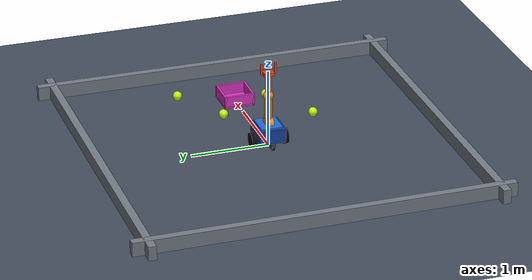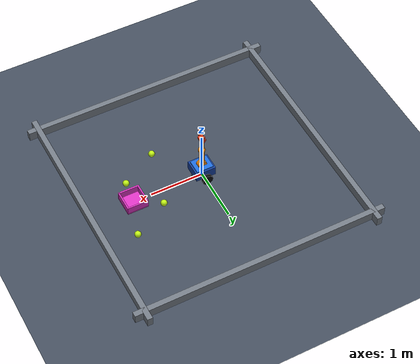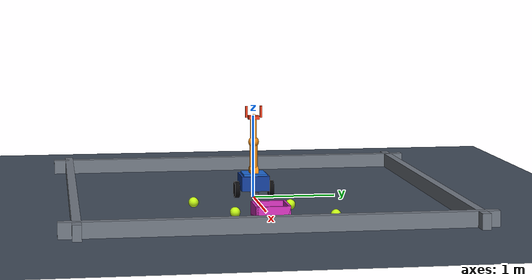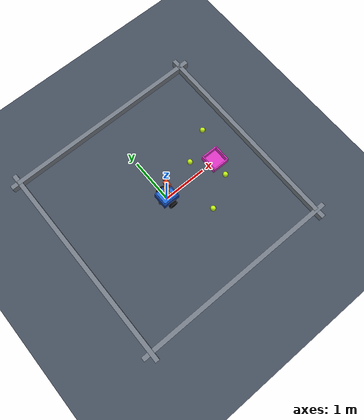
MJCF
<mujoco model="openclaw_scene">
  <!-- 地面捡网球场景: 围挡场地 + 散落网球 + 地面收纳箱 (无桌子, 参照网球抓取小车) -->
  <include file="mobile_manip.generated.xml"/>

  <visual>
    <global offwidth="960" offheight="720"/>
  </visual>

  <asset>
    <texture type="skybox" builtin="gradient" rgb1="0.45 0.55 0.7" rgb2="0.85 0.9 0.95" width="256" height="256"/>
    <texture type="2d" name="ground_tex" builtin="checker" rgb1="0.22 0.26 0.32" rgb2="0.30 0.34 0.40" width="512" height="512"/>
    <material name="ground_mat" texture="ground_tex" texrepeat="8 8" reflectance="0.08"/>
  </asset>

  <worldbody>
    <light name="top" pos="1 0 4" dir="-0.15 0 -1" diffuse="0.9 0.9 0.9" specular="0.3 0.3 0.3"
           directional="true" castshadow="true"/>
    <light name="fill" pos="-2 -2 2.5" dir="0.5 0.5 -1" diffuse="0.32 0.32 0.35" directional="true"/>

    <geom name="floor" type="plane" size="4 4 0.1" material="ground_mat"/>

    <!-- 场地围挡 (防网球滚出) -->
    <geom name="wall_xp" type="box" pos="2.2 0 0.09" size="0.05 2.4 0.09" rgba="0.45 0.48 0.52 1"/>
    <geom name="wall_xn" type="box" pos="-2.2 0 0.09" size="0.05 2.4 0.09" rgba="0.45 0.48 0.52 1"/>
    <geom name="wall_yp" type="box" pos="0 2.2 0.09" size="2.4 0.05 0.09" rgba="0.45 0.48 0.52 1"/>
    <geom name="wall_yn" type="box" pos="0 -2.2 0.09" size="2.4 0.05 0.09" rgba="0.45 0.48 0.52 1"/>

    <!-- 网球 (位置由 env.reset 随机化; 半径 0.06) -->
    <body name="ball_0" pos="0.9 0.3 0.062">
      <freejoint name="ball_0_joint"/>
      <geom name="ball_0_geom" type="sphere" size="0.06" mass="0.06"
            friction="0.9 0.02 0.01" rgba="0.76 0.96 0.08 1"/>
    </body>
    <body name="ball_1" pos="1.3 -0.4 0.062">
      <freejoint name="ball_1_joint"/>
      <geom name="ball_1_geom" type="sphere" size="0.06" mass="0.06"
            friction="0.9 0.02 0.01" rgba="0.76 0.96 0.08 1"/>
    </body>
    <body name="ball_2" pos="0.6 -0.8 0.062">
      <freejoint name="ball_2_joint"/>
      <geom name="ball_2_geom" type="sphere" size="0.06" mass="0.06"
            friction="0.9 0.02 0.01" rgba="0.76 0.96 0.08 1"/>
    </body>
    <body name="ball_3" pos="1.6 0.7 0.062">
      <freejoint name="ball_3_joint"/>
      <geom name="ball_3_geom" type="sphere" size="0.06" mass="0.06"
            friction="0.9 0.02 0.01" rgba="0.76 0.96 0.08 1"/>
    </body>

    <!-- 地面收纳箱: 内腔 ~0.34×0.34, 墙高 0.16, 开口朝上 -->
    <body name="bin" pos="1.35 0.0 0">
      <geom name="bin_bottom" type="box" size="0.20 0.20 0.012" pos="0 0 0.012" rgba="0.85 0.2 0.75 1"/>
      <geom name="bin_wall_xp" type="box" size="0.014 0.20 0.08" pos="0.186 0 0.08" rgba="0.85 0.2 0.75 1"/>
      <geom name="bin_wall_xn" type="box" size="0.014 0.20 0.08" pos="-0.186 0 0.08" rgba="0.85 0.2 0.75 1"/>
      <geom name="bin_wall_yp" type="box" size="0.20 0.014 0.08" pos="0 0.186 0.08" rgba="0.85 0.2 0.75 1"/>
      <geom name="bin_wall_yn" type="box" size="0.20 0.014 0.08" pos="0 -0.186 0.08" rgba="0.85 0.2 0.75 1"/>
    </body>

    <!-- 相机: 俯视(任务观测) + 侧视(演示) -->
    <camera name="overhead" pos="0.45 0 3.0" fovy="62"/>
    <camera name="side" pos="-1.2 -2.3 1.5" euler="2.3 -0.65 0" fovy="55"/>
  </worldbody>

</mujoco>

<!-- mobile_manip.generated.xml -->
<mujoco model="base_chassis">
  <!-- 差速小车底盘 —— 造型与真万向脚轮参照 mujoco-pzc/MuJoCo 的网球抓取小车,
       轮位拓扑用中置双驱动轮 + 前后万向脚轮: 滚转由双轮承担(驱动轮永不卸载),
       俯仰由前后脚轮承担. 高重心机械臂下这比"前驱+单后脚轮"稳定得多. -->
  <compiler angle="radian"/>

  <option impratio="10" integrator="implicitfast"/>

  <default>
    <default class="body_blue">
      <geom rgba="0.08 0.25 0.62 1"/>
    </default>
    <default class="plate_blue">
      <geom rgba="0.12 0.42 0.85 1"/>
    </default>
    <default class="drive_wheel">
      <joint armature="0.1" damping="0.05" frictionloss="0.05" axis="0 1 0"/>
      <geom size="0.1 0.03 0" type="cylinder" friction="1.2" solref="0.005" solimp="0.95 0.99" rgba="0.04 0.04 0.05 1"/>
    </default>
    <default class="arm_main">
      <joint armature="0.02" damping="0.5" frictionloss="0.05"/>
      <default class="arm_arm_orange">
        <geom rgba="0.95 0.55 0.08 1"/>
      </default>
    </default>
  </default>

  <worldbody>
    <body name="base" pos="0 0 0.1">
      <inertial pos="0 0 0.08" mass="55" diaginertia="1.2 1.5 0.9"/>
      <joint name="base_ref" type="free"/>
      <geom name="chassis" class="body_blue" size="0.19 0.17 0.09" pos="0 0 0.09" type="box"/>
      <geom name="top_plate" class="plate_blue" size="0.16 0.14 0.012" pos="0 0 0.19" type="box"/>
      <site name="arm_mount" pos="0 0 0.2" rgba="0 0 0 0"/>
      <camera name="front_cam" quat="0.612359 0.353576 -0.353576 -0.612359" pos="0.16 0 0.16" fovy="75"/>
      <body name="wheel_left" pos="0 0.21 0">
        <joint name="wheel_left_joint" class="drive_wheel"/>
        <geom name="wheel_left_geom" class="drive_wheel" quat="0.707105 0.707108 0 0" mass="2"/>
      </body>
      <body name="wheel_right" pos="0 -0.21 0">
        <joint name="wheel_right_joint" class="drive_wheel"/>
        <geom name="wheel_right_geom" class="drive_wheel" quat="0.707105 0.707108 0 0" mass="2"/>
      </body>
      <body name="caster_front" pos="0.17 0 -0.017">
        <joint name="caster_swivel_f" damping="0.3"/>
        <geom name="caster_fork_f" size="0.03 0.03 0.025" pos="0 0 -0.02" type="box" contype="0" conaffinity="0" rgba="0.25 0.28 0.32 1" mass="0.03"/>
        <body name="caster_wheel_f" pos="0 0 -0.045" quat="0.707107 -0.707107 0 0">
          <joint name="caster_roll_f" damping="0.01"/>
          <geom name="caster_wheel_f_geom" size="0.035 0.015" type="cylinder" contype="0" conaffinity="0" rgba="0.06 0.06 0.07 1" mass="0.02"/>
          <geom name="caster_ball_f_geom" size="0.035" condim="1" friction="0.001 0.001 0.001" solref="0.005" solimp="0.95 0.99" rgba="0.06 0.06 0.07 0" mass="0.08"/>
        </body>
      </body>
      <body name="caster_rear" pos="-0.17 0 -0.017">
        <joint name="caster_swivel_r" damping="0.3"/>
        <geom name="caster_fork_r" size="0.03 0.03 0.025" pos="0 0 -0.02" type="box" contype="0" conaffinity="0" rgba="0.25 0.28 0.32 1" mass="0.03"/>
        <body name="caster_wheel_r" pos="0 0 -0.045" quat="0.707107 -0.707107 0 0">
          <joint name="caster_roll_r" damping="0.01"/>
          <geom name="caster_wheel_r_geom" size="0.035 0.015" type="cylinder" contype="0" conaffinity="0" rgba="0.06 0.06 0.07 1" mass="0.02"/>
          <geom name="caster_ball_r_geom" size="0.035" condim="1" friction="0.001 0.001 0.001" solref="0.005" solimp="0.95 0.99" rgba="0.06 0.06 0.07 0" mass="0.08"/>
        </body>
      </body>
      <body name="arm_arm_base" pos="0 0 0.2">
        <joint name="arm_shoulder_joint" range="-0.3 2.2" armature="0.02" damping="0.5" frictionloss="0.05" axis="0 1 0"/>
        <geom name="arm_shoulder_motor" class="arm_arm_orange" size="0.085 0.05" quat="0.707105 0.707108 0 0" type="cylinder" mass="0.6"/>
        <body name="arm_upper_arm" pos="0 0 0.05">
          <geom name="arm_upper_link" class="arm_arm_orange" size="0.05 0.14" pos="0 0 0.14" quat="0 1 0 0" type="capsule" mass="0.5"/>
          <body name="arm_elbow" pos="0 0 0.33">
            <joint name="arm_elbow_joint" range="-2.8 2.6" armature="0.02" damping="0.5" frictionloss="0.05" axis="0 1 0"/>
            <geom name="arm_elbow_motor" class="arm_arm_orange" size="0.065" mass="0.4"/>
            <body name="arm_forearm" pos="0 0 0.05">
              <geom name="arm_forearm_link" class="arm_arm_orange" size="0.04 0.125" pos="0 0 0.125" quat="0 1 0 0" type="capsule" mass="0.3"/>
              <body name="arm_gripper_tip" pos="0 0 0.25">
                <geom name="arm_palm" size="0.05 0.065 0.022" type="box" rgba="0.95 0.25 0.12 1" mass="0.2"/>
                <site name="arm_gripper_tcp" size="0.006" pos="0 0 0.1" rgba="1 0 0 0"/>
                <body name="arm_left_finger" pos="0 0.09 0.01">
                  <joint name="arm_finger_slide" type="slide" range="0 0.05" armature="0.02" damping="0.5" frictionloss="0.05" axis="0 -1 0"/>
                  <geom name="arm_left_finger_geom" size="0.015 0.013 0.07" pos="0 0 0.06" type="box" friction="1 0.02 0.01" solref="0.01" solimp="0.9 0.95 0.01" rgba="0.95 0.25 0.12 1" mass="0.07"/>
                </body>
                <body name="arm_right_finger" pos="0 -0.09 0.01">
                  <geom name="arm_right_finger_geom" size="0.015 0.013 0.07" pos="0 0 0.06" type="box" friction="1 0.02 0.01" solref="0.01" solimp="0.9 0.95 0.01" rgba="0.95 0.25 0.12 1" mass="0.07"/>
                </body>
              </body>
            </body>
          </body>
        </body>
      </body>
    </body>
  </worldbody>

  <contact>
    <exclude body1="arm_upper_arm" body2="arm_forearm"/>
    <exclude body1="arm_upper_arm" body2="arm_gripper_tip"/>
    <exclude body1="arm_upper_arm" body2="arm_left_finger"/>
    <exclude body1="arm_upper_arm" body2="arm_right_finger"/>
  </contact>

  <actuator>
    <general name="wheel_left_vel" joint="wheel_left_joint" ctrlrange="-5 5" biastype="affine" gainprm="100" biasprm="0 0 -100"/>
    <general name="wheel_right_vel" joint="wheel_right_joint" ctrlrange="-5 5" biastype="affine" gainprm="100" biasprm="0 0 -100"/>
    <general name="arm_shoulder_servo" joint="arm_shoulder_joint" ctrlrange="-0.3 2.2" forcerange="-35 35" biastype="affine" gainprm="240" biasprm="0 -240 -24"/>
    <general name="arm_elbow_servo" joint="arm_elbow_joint" ctrlrange="-2.8 2.6" forcerange="-25 25" biastype="affine" gainprm="200" biasprm="0 -200 -20"/>
    <general name="arm_finger_servo" joint="arm_finger_slide" ctrlrange="0 0.05" forcerange="-10 10" biastype="affine" gainprm="90" biasprm="0 -90 -9"/>
  </actuator>
</mujoco>
